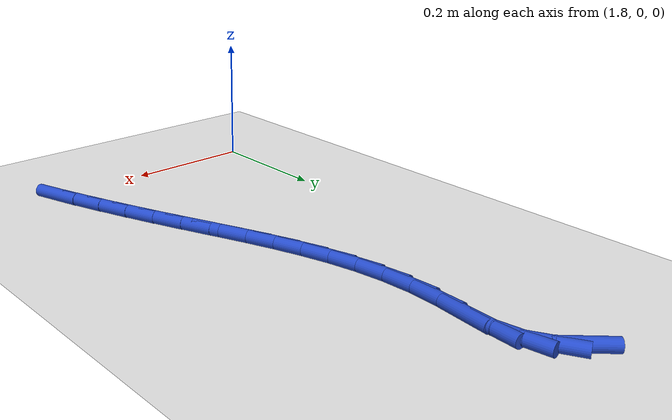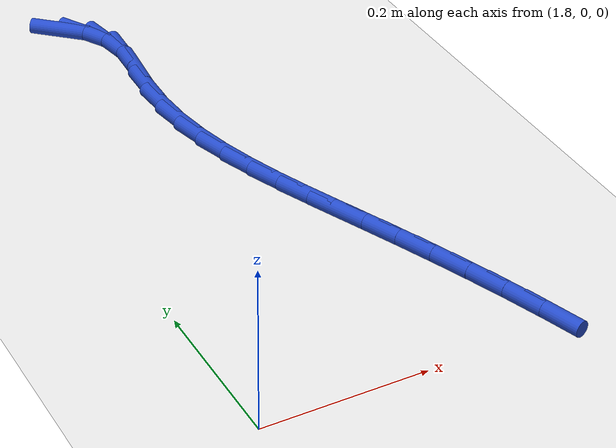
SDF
<sdf version="1.6">
 <world name="default">
  <model name="ground_plane">
   <static>1</static>
   <link name="link">
    <collision name="collision">
     <geometry><plane><normal>0 0 1</normal><size>100 100</size></plane></geometry>
     <surface><friction><ode><mu>100</mu><mu2>50</mu2></ode></friction></surface>
    </collision>
    <visual name="visual">
     <cast_shadows>0</cast_shadows>
     <geometry><plane><normal>0 0 1</normal><size>100 100</size></plane></geometry>
     <material>
      <script><uri>file://media/materials/scripts/gazebo.material</uri><name>Gazebo/WhiteGlow</name></script>
     </material>
    </visual>
   </link>
  </model>
  <model name="line">
   <link name="link_60">
    <pose>1.9287244077522654 0.8231131337678623 0.01 0 1.57 -0.7423410543482986</pose>
    <collision name="collision">
     <geometry><cylinder><radius>0.01</radius><length>0.08</length></cylinder></geometry>
    </collision>
    <visual name="visual">
     <material>
      <script><name>Gazebo/Blue</name><uri>file://media/materials/scripts/gazebo.material</uri></script>
     </material>
     <geometry><cylinder><radius>0.01</radius><length>0.08</length></cylinder></geometry>
    </visual>
   </link>
   <link name="link_61">
    <pose>1.9546539222119088 0.7993256148901767 0.01 0 1.57 -1.0623098117566379</pose>
    <collision name="collision">
     <geometry><cylinder><radius>0.01</radius><length>0.08</length></cylinder></geometry>
    </collision>
    <visual name="visual">
     <material>
      <script><name>Gazebo/Blue</name><uri>file://media/materials/scripts/gazebo.material</uri></script>
     </material>
     <geometry><cylinder><radius>0.01</radius><length>0.08</length></cylinder></geometry>
    </visual>
   </link>
   <link name="link_62">
    <pose>1.9714786195387142 0.7691399291201259 0.01 0 1.57 -1.3993604400209143</pose>
    <collision name="collision">
     <geometry><cylinder><radius>0.01</radius><length>0.08</length></cylinder></geometry>
    </collision>
    <visual name="visual">
     <material>
      <script><name>Gazebo/Blue</name><uri>file://media/materials/scripts/gazebo.material</uri></script>
     </material>
     <geometry><cylinder><radius>0.01</radius><length>0.08</length></cylinder></geometry>
    </visual>
   </link>
   <link name="link_63">
    <pose>1.9779929084815504 0.7315145241914516 0.01 0 1.57 1.5167620097109134</pose>
    <collision name="collision">
     <geometry><cylinder><radius>0.01</radius><length>0.08</length></cylinder></geometry>
    </collision>
    <visual name="visual">
     <material>
      <script><name>Gazebo/Blue</name><uri>file://media/materials/scripts/gazebo.material</uri></script>
     </material>
     <geometry><cylinder><radius>0.01</radius><length>0.08</length></cylinder></geometry>
    </visual>
   </link>
   <link name="link_64">
    <pose>1.9755905956606663 0.687098781042876 0.01 0 1.57 1.4693591732198337</pose>
    <collision name="collision">
     <geometry><cylinder><radius>0.01</radius><length>0.08</length></cylinder></geometry>
    </collision>
    <visual name="visual">
     <material>
      <script><name>Gazebo/Blue</name><uri>file://media/materials/scripts/gazebo.material</uri></script>
     </material>
     <geometry><cylinder><radius>0.01</radius><length>0.08</length></cylinder></geometry>
    </visual>
   </link>
   <link name="link_65">
    <pose>1.9707834842706506 0.6398713863903556 0.01 0 1.57 1.5431513272881845</pose>
    <collision name="collision">
     <geometry><cylinder><radius>0.01</radius><length>0.08</length></cylinder></geometry>
    </collision>
    <visual name="visual">
     <material>
      <script><name>Gazebo/Blue</name><uri>file://media/materials/scripts/gazebo.material</uri></script>
     </material>
     <geometry><cylinder><radius>0.01</radius><length>0.08</length></cylinder></geometry>
    </visual>
   </link>
   <link name="link_66">
    <pose>1.9695006009935125 0.5934775911084603 0.01 0 1.57 -1.5024310687218616</pose>
    <collision name="collision">
     <geometry><cylinder><radius>0.01</radius><length>0.08</length></cylinder></geometry>
    </collision>
    <visual name="visual">
     <material>
      <script><name>Gazebo/Blue</name><uri>file://media/materials/scripts/gazebo.material</uri></script>
     </material>
     <geometry><cylinder><radius>0.01</radius><length>0.08</length></cylinder></geometry>
    </visual>
   </link>
   <link name="link_67">
    <pose>1.972583721075551 0.5484501112569047 0.01 0 1.57 -1.4146633289215687</pose>
    <collision name="collision">
     <geometry><cylinder><radius>0.01</radius><length>0.08</length></cylinder></geometry>
    </collision>
    <visual name="visual">
     <material>
      <script><name>Gazebo/Blue</name><uri>file://media/materials/scripts/gazebo.material</uri></script>
     </material>
     <geometry><cylinder><radius>0.01</radius><length>0.08</length></cylinder></geometry>
    </visual>
   </link>
   <link name="link_68">
    <pose>1.9795046904083984 0.5044834985419824 0.01 0 1.57 -1.3383180069471894</pose>
    <collision name="collision">
     <geometry><cylinder><radius>0.01</radius><length>0.08</length></cylinder></geometry>
    </collision>
    <visual name="visual">
     <material>
      <script><name>Gazebo/Blue</name><uri>file://media/materials/scripts/gazebo.material</uri></script>
     </material>
     <geometry><cylinder><radius>0.01</radius><length>0.08</length></cylinder></geometry>
    </visual>
   </link>
   <link name="link_69">
    <pose>1.9897353354917005 0.46127229280538184 0.01 0 1.57 -1.2754014826015665</pose>
    <collision name="collision">
     <geometry><cylinder><radius>0.01</radius><length>0.08</length></cylinder></geometry>
    </collision>
    <visual name="visual">
     <material>
      <script><name>Gazebo/Blue</name><uri>file://media/materials/scripts/gazebo.material</uri></script>
     </material>
     <geometry><cylinder><radius>0.01</radius><length>0.08</length></cylinder></geometry>
    </visual>
   </link>
   <link name="link_70">
    <pose>2.0027474828251006 0.4185110338887897 0.01 0 1.57 -1.2268320605868643</pose>
    <collision name="collision">
     <geometry><cylinder><radius>0.01</radius><length>0.08</length></cylinder></geometry>
    </collision>
    <visual name="visual">
     <material>
      <script><name>Gazebo/Blue</name><uri>file://media/materials/scripts/gazebo.material</uri></script>
     </material>
     <geometry><cylinder><radius>0.01</radius><length>0.08</length></cylinder></geometry>
    </visual>
   </link>
   <link name="link_71">
    <pose>2.0180129589082445 0.37589426163389306 0.01 0 1.57 -1.192719988314084</pose>
    <collision name="collision">
     <geometry><cylinder><radius>0.01</radius><length>0.08</length></cylinder></geometry>
    </collision>
    <visual name="visual">
     <material>
      <script><name>Gazebo/Blue</name><uri>file://media/materials/scripts/gazebo.material</uri></script>
     </material>
     <geometry><cylinder><radius>0.01</radius><length>0.08</length></cylinder></geometry>
    </visual>
   </link>
   <link name="link_72">
    <pose>2.035003590240775 0.33311651588238006 0.01 0 1.57 -1.1726758772768295</pose>
    <collision name="collision">
     <geometry><cylinder><radius>0.01</radius><length>0.08</length></cylinder></geometry>
    </collision>
    <visual name="visual">
     <material>
      <script><name>Gazebo/Blue</name><uri>file://media/materials/scripts/gazebo.material</uri></script>
     </material>
     <geometry><cylinder><radius>0.01</radius><length>0.08</length></cylinder></geometry>
    </visual>
   </link>
   <link name="link_73">
    <pose>2.0531912033223385 0.28987233647593724 0.01 0 1.57 -1.166050614019448</pose>
    <collision name="collision">
     <geometry><cylinder><radius>0.01</radius><length>0.08</length></cylinder></geometry>
    </collision>
    <visual name="visual">
     <material>
      <script><name>Gazebo/Blue</name><uri>file://media/materials/scripts/gazebo.material</uri></script>
     </material>
     <geometry><cylinder><radius>0.01</radius><length>0.08</length></cylinder></geometry>
    </visual>
   </link>
   <link name="link_74">
    <pose>2.072047624652578 0.24585626325625282 0.01 0 1.57 -1.1719171698753708</pose>
    <collision name="collision">
     <geometry><cylinder><radius>0.01</radius><length>0.08</length></cylinder></geometry>
    </collision>
    <visual name="visual">
     <material>
      <script><name>Gazebo/Blue</name><uri>file://media/materials/scripts/gazebo.material</uri></script>
     </material>
     <geometry><cylinder><radius>0.01</radius><length>0.08</length></cylinder></geometry>
    </visual>
   </link>
   <link name="link_75">
    <pose>2.0910498328747025 0.2007709927875197 0.01 0 1.57 -1.1850726926067014</pose>
    <collision name="collision">
     <geometry><cylinder><radius>0.01</radius><length>0.08</length></cylinder></geometry>
    </collision>
    <visual name="visual">
     <material>
      <script><name>Gazebo/Blue</name><uri>file://media/materials/scripts/gazebo.material</uri></script>
     </material>
     <geometry><cylinder><radius>0.01</radius><length>0.08</length></cylinder></geometry>
    </visual>
   </link>
   <link name="link_76">
    <pose>2.1098193416079503 0.15454804516676868 0.01 0 1.57 -1.2003973204439362</pose>
    <collision name="collision">
     <geometry><cylinder><radius>0.01</radius><length>0.08</length></cylinder></geometry>
    </collision>
    <visual name="visual">
     <material>
      <script><name>Gazebo/Blue</name><uri>file://media/materials/scripts/gazebo.material</uri></script>
     </material>
     <geometry><cylinder><radius>0.01</radius><length>0.08</length></cylinder></geometry>
    </visual>
   </link>
   <link name="link_77">
    <pose>2.128138339245633 0.10737331607852499 0.01 0 1.57 -1.21777601067143</pose>
    <collision name="collision">
     <geometry><cylinder><radius>0.01</radius><length>0.08</length></cylinder></geometry>
    </collision>
    <visual name="visual">
     <material>
      <script><name>Gazebo/Blue</name><uri>file://media/materials/scripts/gazebo.material</uri></script>
     </material>
     <geometry><cylinder><radius>0.01</radius><length>0.08</length></cylinder></geometry>
    </visual>
   </link>
   <link name="link_78">
    <pose>2.145797405628316 0.05944598630036753 0.01 0 1.57 -1.2374062046655536</pose>
    <collision name="collision">
     <geometry><cylinder><radius>0.01</radius><length>0.08</length></cylinder></geometry>
    </collision>
    <visual name="visual">
     <material>
      <script><name>Gazebo/Blue</name><uri>file://media/materials/scripts/gazebo.material</uri></script>
     </material>
     <geometry><cylinder><radius>0.01</radius><length>0.08</length></cylinder></geometry>
    </visual>
   </link>
   <link name="link_79">
    <pose>2.1625871205965645 0.010965236609877292 0.01 0 1.57 -1.2595385543618351</pose>
    <collision name="collision">
     <geometry><cylinder><radius>0.01</radius><length>0.08</length></cylinder></geometry>
    </collision>
    <visual name="visual">
     <material>
      <script><name>Gazebo/Blue</name><uri>file://media/materials/scripts/gazebo.material</uri></script>
     </material>
     <geometry><cylinder><radius>0.01</radius><length>0.08</length></cylinder></geometry>
    </visual>
   </link>
  </model>
 </world>
</sdf>
